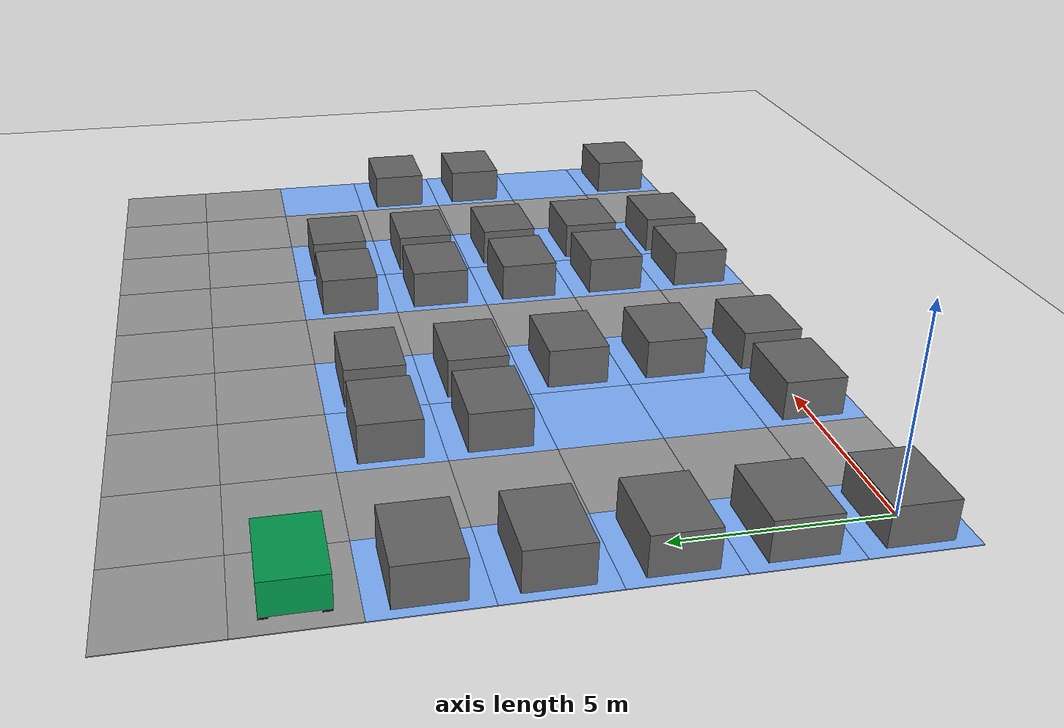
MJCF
<?xml version="1.0" encoding="UTF-8"?>
<mujoco model="parking_env">
    <compiler angle="radian" coordinate="local" inertiafromgeom="true"/>
    <option timestep="0.01" gravity="0 0 -9.81" iterations="50" />

    <default>
        <geom contype="1" conaffinity="1" condim="3" friction="1 0.1 0.1" rgba="0.8 0.8 0.8 1"/>
        <joint damping="0.1" limited="true"/>
        <motor ctrllimited="true" ctrlrange="-1 1"/>
    </default>

    <worldbody>
        <!-- Cameras -->
        <camera name="overhead" pos="0 0 30" euler="0 0 0" mode="fixed"/>
        <camera name="angled" pos="15 15 15" euler="-45 0 45" mode="fixed"/>

        <!-- Light -->
        <light directional="true" diffuse="0.7 0.7 0.7" pos="5 5 10"/>

        <!-- Floor -->
        <geom name="floor" type="plane" pos="0 0 0" size="50 50 1" rgba="0.9 0.9 0.9 1"/>

        <geom name="parking_space_0_0" type="box"
              pos="0.0 0.0 0.0"
              size="1.25 1.25 0.01"
              rgba="0.5 0.7 1 1" />
        <geom name="road_0_1" type="box"
              pos="2.5 0.0 0.0"
              size="1.25 1.25 0.01"
              rgba="0.6 0.6 0.6 1" />
        <geom name="parking_space_0_2" type="box"
              pos="5.0 0.0 0.0"
              size="1.25 1.25 0.01"
              rgba="0.5 0.7 1 1" />
        <geom name="parking_space_0_3" type="box"
              pos="7.5 0.0 0.0"
              size="1.25 1.25 0.01"
              rgba="0.5 0.7 1 1" />
        <geom name="road_0_4" type="box"
              pos="10.0 0.0 0.0"
              size="1.25 1.25 0.01"
              rgba="0.6 0.6 0.6 1" />
        <geom name="parking_space_0_5" type="box"
              pos="12.5 0.0 0.0"
              size="1.25 1.25 0.01"
              rgba="0.5 0.7 1 1" />
        <geom name="parking_space_0_6" type="box"
              pos="15.0 0.0 0.0"
              size="1.25 1.25 0.01"
              rgba="0.5 0.7 1 1" />
        <geom name="road_0_7" type="box"
              pos="17.5 0.0 0.0"
              size="1.25 1.25 0.01"
              rgba="0.6 0.6 0.6 1" />
        <geom name="parking_space_0_8" type="box"
              pos="20.0 0.0 0.0"
              size="1.25 1.25 0.01"
              rgba="0.5 0.7 1 1" />
        <geom name="parking_space_1_0" type="box"
              pos="0.0 2.5 0.0"
              size="1.25 1.25 0.01"
              rgba="0.5 0.7 1 1" />
        <geom name="road_1_1" type="box"
              pos="2.5 2.5 0.0"
              size="1.25 1.25 0.01"
              rgba="0.6 0.6 0.6 1" />
        <geom name="parking_space_1_2" type="box"
              pos="5.0 2.5 0.0"
              size="1.25 1.25 0.01"
              rgba="0.5 0.7 1 1" />
        <geom name="parking_space_1_3" type="box"
              pos="7.5 2.5 0.0"
              size="1.25 1.25 0.01"
              rgba="0.5 0.7 1 1" />
        <geom name="road_1_4" type="box"
              pos="10.0 2.5 0.0"
              size="1.25 1.25 0.01"
              rgba="0.6 0.6 0.6 1" />
        <geom name="parking_space_1_5" type="box"
              pos="12.5 2.5 0.0"
              size="1.25 1.25 0.01"
              rgba="0.5 0.7 1 1" />
        <geom name="parking_space_1_6" type="box"
              pos="15.0 2.5 0.0"
              size="1.25 1.25 0.01"
              rgba="0.5 0.7 1 1" />
        <geom name="road_1_7" type="box"
              pos="17.5 2.5 0.0"
              size="1.25 1.25 0.01"
              rgba="0.6 0.6 0.6 1" />
        <geom name="parking_space_1_8" type="box"
              pos="20.0 2.5 0.0"
              size="1.25 1.25 0.01"
              rgba="0.5 0.7 1 1" />
        <geom name="parking_space_2_0" type="box"
              pos="0.0 5.0 0.0"
              size="1.25 1.25 0.01"
              rgba="0.5 0.7 1 1" />
        <geom name="road_2_1" type="box"
              pos="2.5 5.0 0.0"
              size="1.25 1.25 0.01"
              rgba="0.6 0.6 0.6 1" />
        <geom name="parking_space_2_2" type="box"
              pos="5.0 5.0 0.0"
              size="1.25 1.25 0.01"
              rgba="0.5 0.7 1 1" />
        <geom name="parking_space_2_3" type="box"
              pos="7.5 5.0 0.0"
              size="1.25 1.25 0.01"
              rgba="0.5 0.7 1 1" />
        <geom name="road_2_4" type="box"
              pos="10.0 5.0 0.0"
              size="1.25 1.25 0.01"
              rgba="0.6 0.6 0.6 1" />
        <geom name="parking_space_2_5" type="box"
              pos="12.5 5.0 0.0"
              size="1.25 1.25 0.01"
              rgba="0.5 0.7 1 1" />
        <geom name="parking_space_2_6" type="box"
              pos="15.0 5.0 0.0"
              size="1.25 1.25 0.01"
              rgba="0.5 0.7 1 1" />
        <geom name="road_2_7" type="box"
              pos="17.5 5.0 0.0"
              size="1.25 1.25 0.01"
              rgba="0.6 0.6 0.6 1" />
        <geom name="parking_space_2_8" type="box"
              pos="20.0 5.0 0.0"
              size="1.25 1.25 0.01"
              rgba="0.5 0.7 1 1" />
        <geom name="parking_space_3_0" type="box"
              pos="0.0 7.5 0.0"
              size="1.25 1.25 0.01"
              rgba="0.5 0.7 1 1" />
        <geom name="road_3_1" type="box"
              pos="2.5 7.5 0.0"
              size="1.25 1.25 0.01"
              rgba="0.6 0.6 0.6 1" />
        <geom name="parking_space_3_2" type="box"
              pos="5.0 7.5 0.0"
              size="1.25 1.25 0.01"
              rgba="0.5 0.7 1 1" />
        <geom name="parking_space_3_3" type="box"
              pos="7.5 7.5 0.0"
              size="1.25 1.25 0.01"
              rgba="0.5 0.7 1 1" />
        <geom name="road_3_4" type="box"
              pos="10.0 7.5 0.0"
              size="1.25 1.25 0.01"
              rgba="0.6 0.6 0.6 1" />
        <geom name="parking_space_3_5" type="box"
              pos="12.5 7.5 0.0"
              size="1.25 1.25 0.01"
              rgba="0.5 0.7 1 1" />
        <geom name="parking_space_3_6" type="box"
              pos="15.0 7.5 0.0"
              size="1.25 1.25 0.01"
              rgba="0.5 0.7 1 1" />
        <geom name="road_3_7" type="box"
              pos="17.5 7.5 0.0"
              size="1.25 1.25 0.01"
              rgba="0.6 0.6 0.6 1" />
        <geom name="parking_space_3_8" type="box"
              pos="20.0 7.5 0.0"
              size="1.25 1.25 0.01"
              rgba="0.5 0.7 1 1" />
        <geom name="parking_space_4_0" type="box"
              pos="0.0 10.0 0.0"
              size="1.25 1.25 0.01"
              rgba="0.5 0.7 1 1" />
        <geom name="road_4_1" type="box"
              pos="2.5 10.0 0.0"
              size="1.25 1.25 0.01"
              rgba="0.6 0.6 0.6 1" />
        <geom name="parking_space_4_2" type="box"
              pos="5.0 10.0 0.0"
              size="1.25 1.25 0.01"
              rgba="0.5 0.7 1 1" />
        <geom name="parking_space_4_3" type="box"
              pos="7.5 10.0 0.0"
              size="1.25 1.25 0.01"
              rgba="0.5 0.7 1 1" />
        <geom name="road_4_4" type="box"
              pos="10.0 10.0 0.0"
              size="1.25 1.25 0.01"
              rgba="0.6 0.6 0.6 1" />
        <geom name="parking_space_4_5" type="box"
              pos="12.5 10.0 0.0"
              size="1.25 1.25 0.01"
              rgba="0.5 0.7 1 1" />
        <geom name="parking_space_4_6" type="box"
              pos="15.0 10.0 0.0"
              size="1.25 1.25 0.01"
              rgba="0.5 0.7 1 1" />
        <geom name="road_4_7" type="box"
              pos="17.5 10.0 0.0"
              size="1.25 1.25 0.01"
              rgba="0.6 0.6 0.6 1" />
        <geom name="parking_space_4_8" type="box"
              pos="20.0 10.0 0.0"
              size="1.25 1.25 0.01"
              rgba="0.5 0.7 1 1" />
        <geom name="road_5_0" type="box"
              pos="0.0 12.5 0.0"
              size="1.25 1.25 0.01"
              rgba="0.6 0.6 0.6 1" />
        <geom name="road_5_1" type="box"
              pos="2.5 12.5 0.0"
              size="1.25 1.25 0.01"
              rgba="0.6 0.6 0.6 1" />
        <geom name="road_5_2" type="box"
              pos="5.0 12.5 0.0"
              size="1.25 1.25 0.01"
              rgba="0.6 0.6 0.6 1" />
        <geom name="road_5_3" type="box"
              pos="7.5 12.5 0.0"
              size="1.25 1.25 0.01"
              rgba="0.6 0.6 0.6 1" />
        <geom name="road_5_4" type="box"
              pos="10.0 12.5 0.0"
              size="1.25 1.25 0.01"
              rgba="0.6 0.6 0.6 1" />
        <geom name="road_5_5" type="box"
              pos="12.5 12.5 0.0"
              size="1.25 1.25 0.01"
              rgba="0.6 0.6 0.6 1" />
        <geom name="road_5_6" type="box"
              pos="15.0 12.5 0.0"
              size="1.25 1.25 0.01"
              rgba="0.6 0.6 0.6 1" />
        <geom name="road_5_7" type="box"
              pos="17.5 12.5 0.0"
              size="1.25 1.25 0.01"
              rgba="0.6 0.6 0.6 1" />
        <geom name="road_5_8" type="box"
              pos="20.0 12.5 0.0"
              size="1.25 1.25 0.01"
              rgba="0.6 0.6 0.6 1" />
        <geom name="road_6_0" type="box"
              pos="0.0 15.0 0.0"
              size="1.25 1.25 0.01"
              rgba="0.6 0.6 0.6 1" />
        <geom name="road_6_1" type="box"
              pos="2.5 15.0 0.0"
              size="1.25 1.25 0.01"
              rgba="0.6 0.6 0.6 1" />
        <geom name="road_6_2" type="box"
              pos="5.0 15.0 0.0"
              size="1.25 1.25 0.01"
              rgba="0.6 0.6 0.6 1" />
        <geom name="road_6_3" type="box"
              pos="7.5 15.0 0.0"
              size="1.25 1.25 0.01"
              rgba="0.6 0.6 0.6 1" />
        <geom name="road_6_4" type="box"
              pos="10.0 15.0 0.0"
              size="1.25 1.25 0.01"
              rgba="0.6 0.6 0.6 1" />
        <geom name="road_6_5" type="box"
              pos="12.5 15.0 0.0"
              size="1.25 1.25 0.01"
              rgba="0.6 0.6 0.6 1" />
        <geom name="road_6_6" type="box"
              pos="15.0 15.0 0.0"
              size="1.25 1.25 0.01"
              rgba="0.6 0.6 0.6 1" />
        <geom name="road_6_7" type="box"
              pos="17.5 15.0 0.0"
              size="1.25 1.25 0.01"
              rgba="0.6 0.6 0.6 1" />
        <geom name="road_6_8" type="box"
              pos="20.0 15.0 0.0"
              size="1.25 1.25 0.01"
              rgba="0.6 0.6 0.6 1" />
        <body name="obs_car_0_0" pos="0.0 0.0 0.5">
            <geom name="obs_car_0_0_geom" type="box" size="1.0 0.75 0.5" rgba="0.4 0.4 0.4 1" />
        </body>
        <body name="obs_car_0_2" pos="5.0 0.0 0.5">
            <geom name="obs_car_0_2_geom" type="box" size="1.0 0.75 0.5" rgba="0.4 0.4 0.4 1" />
        </body>
        <body name="obs_car_0_3" pos="7.5 0.0 0.5">
            <geom name="obs_car_0_3_geom" type="box" size="1.0 0.75 0.5" rgba="0.4 0.4 0.4 1" />
        </body>
        <body name="obs_car_0_5" pos="12.5 0.0 0.5">
            <geom name="obs_car_0_5_geom" type="box" size="1.0 0.75 0.5" rgba="0.4 0.4 0.4 1" />
        </body>
        <body name="obs_car_0_6" pos="15.0 0.0 0.5">
            <geom name="obs_car_0_6_geom" type="box" size="1.0 0.75 0.5" rgba="0.4 0.4 0.4 1" />
        </body>
        <body name="obs_car_0_8" pos="20.0 0.0 0.5">
            <geom name="obs_car_0_8_geom" type="box" size="1.0 0.75 0.5" rgba="0.4 0.4 0.4 1" />
        </body>
        <body name="obs_car_1_0" pos="0.0 2.5 0.5">
            <geom name="obs_car_1_0_geom" type="box" size="1.0 0.75 0.5" rgba="0.4 0.4 0.4 1" />
        </body>
        <body name="obs_car_1_3" pos="7.5 2.5 0.5">
            <geom name="obs_car_1_3_geom" type="box" size="1.0 0.75 0.5" rgba="0.4 0.4 0.4 1" />
        </body>
        <body name="obs_car_1_5" pos="12.5 2.5 0.5">
            <geom name="obs_car_1_5_geom" type="box" size="1.0 0.75 0.5" rgba="0.4 0.4 0.4 1" />
        </body>
        <body name="obs_car_1_6" pos="15.0 2.5 0.5">
            <geom name="obs_car_1_6_geom" type="box" size="1.0 0.75 0.5" rgba="0.4 0.4 0.4 1" />
        </body>
        <body name="obs_car_2_0" pos="0.0 5.0 0.5">
            <geom name="obs_car_2_0_geom" type="box" size="1.0 0.75 0.5" rgba="0.4 0.4 0.4 1" />
        </body>
        <body name="obs_car_2_3" pos="7.5 5.0 0.5">
            <geom name="obs_car_2_3_geom" type="box" size="1.0 0.75 0.5" rgba="0.4 0.4 0.4 1" />
        </body>
        <body name="obs_car_2_5" pos="12.5 5.0 0.5">
            <geom name="obs_car_2_5_geom" type="box" size="1.0 0.75 0.5" rgba="0.4 0.4 0.4 1" />
        </body>
        <body name="obs_car_2_6" pos="15.0 5.0 0.5">
            <geom name="obs_car_2_6_geom" type="box" size="1.0 0.75 0.5" rgba="0.4 0.4 0.4 1" />
        </body>
        <body name="obs_car_2_8" pos="20.0 5.0 0.5">
            <geom name="obs_car_2_8_geom" type="box" size="1.0 0.75 0.5" rgba="0.4 0.4 0.4 1" />
        </body>
        <body name="obs_car_3_0" pos="0.0 7.5 0.5">
            <geom name="obs_car_3_0_geom" type="box" size="1.0 0.75 0.5" rgba="0.4 0.4 0.4 1" />
        </body>
        <body name="obs_car_3_2" pos="5.0 7.5 0.5">
            <geom name="obs_car_3_2_geom" type="box" size="1.0 0.75 0.5" rgba="0.4 0.4 0.4 1" />
        </body>
        <body name="obs_car_3_3" pos="7.5 7.5 0.5">
            <geom name="obs_car_3_3_geom" type="box" size="1.0 0.75 0.5" rgba="0.4 0.4 0.4 1" />
        </body>
        <body name="obs_car_3_5" pos="12.5 7.5 0.5">
            <geom name="obs_car_3_5_geom" type="box" size="1.0 0.75 0.5" rgba="0.4 0.4 0.4 1" />
        </body>
        <body name="obs_car_3_6" pos="15.0 7.5 0.5">
            <geom name="obs_car_3_6_geom" type="box" size="1.0 0.75 0.5" rgba="0.4 0.4 0.4 1" />
        </body>
        <body name="obs_car_3_8" pos="20.0 7.5 0.5">
            <geom name="obs_car_3_8_geom" type="box" size="1.0 0.75 0.5" rgba="0.4 0.4 0.4 1" />
        </body>
        <body name="obs_car_4_0" pos="0.0 10.0 0.5">
            <geom name="obs_car_4_0_geom" type="box" size="1.0 0.75 0.5" rgba="0.4 0.4 0.4 1" />
        </body>
        <body name="obs_car_4_2" pos="5.0 10.0 0.5">
            <geom name="obs_car_4_2_geom" type="box" size="1.0 0.75 0.5" rgba="0.4 0.4 0.4 1" />
        </body>
        <body name="obs_car_4_3" pos="7.5 10.0 0.5">
            <geom name="obs_car_4_3_geom" type="box" size="1.0 0.75 0.5" rgba="0.4 0.4 0.4 1" />
        </body>
        <body name="obs_car_4_5" pos="12.5 10.0 0.5">
            <geom name="obs_car_4_5_geom" type="box" size="1.0 0.75 0.5" rgba="0.4 0.4 0.4 1" />
        </body>
        <body name="obs_car_4_6" pos="15.0 10.0 0.5">
            <geom name="obs_car_4_6_geom" type="box" size="1.0 0.75 0.5" rgba="0.4 0.4 0.4 1" />
        </body>

        <!-- Agent Car -->
        <body name="agent_car" pos="0.0 12.5 0.6" euler="0 0 0">
            <geom name="agent_car_chassis" type="box" size="1 0.7 0.4" rgba="0 0.6 0.3 1" />
            <joint name="agent_car_free" type="free"/>

            <!-- FRONT LEFT WHEEL -->
            <body name="front_left_wheel" pos="0.6 0.6 -0.4">
                <joint name="steer_left_joint" type="hinge" axis="0 1 1" range="-1 1"/>
                <joint name="front_left_joint" type="hinge" axis="0 1 0" range="-999 999"/>
                <geom name="front_left_wheel_geom" type="cylinder" size="0.3 0.1" euler="1.5708 0 0" rgba="0.1 0.1 0.1 1"/>
            </body>

            <!-- FRONT RIGHT WHEEL -->
            <body name="front_right_wheel" pos="0.6 -0.6 -0.4">
                <joint name="steer_right_joint" type="hinge" axis="0 0 1" range="-1 1"/>
                <joint name="front_right_joint" type="hinge" axis="0 1 0" range="-999 999"/>
                <geom name="front_right_wheel_geom" type="cylinder" size="0.3 0.1" euler="1.5708 0 0" rgba="0.1 0.1 0.1 1"/>
            </body>

            <!-- REAR LEFT WHEEL -->
            <body name="rear_left_wheel" pos="-0.6 0.6 -0.4">
                <joint name="drive_left_joint" type="hinge" axis="0 1 0" range="-999 999"/>
                <geom name="rear_left_wheel_geom" type="cylinder" size="0.3 0.1" euler="1.5708 0 0" rgba="0.1 0.1 0.1 1"/>
            </body>

            <!-- REAR RIGHT WHEEL -->
            <body name="rear_right_wheel" pos="-0.6 -0.6 -0.4">
                <joint name="drive_right_joint" type="hinge" axis="0 1 0" range="-999 999"/>
                <geom name="rear_right_wheel_geom" type="cylinder" size="0.3 0.1" euler="1.5708 0 0" rgba="0.1 0.1 0.1 1"/>
            </body>
        </body>

    </worldbody>

    <actuator>
        <motor name="steer_left_motor" joint="steer_left_joint" gear="50"/>
        <motor name="steer_right_motor" joint="steer_right_joint" gear="50"/>
        <motor name="drive_left_motor" joint="drive_left_joint" gear="500"/>
        <motor name="drive_right_motor" joint="drive_right_joint" gear="500"/>
    </actuator>
</mujoco>
